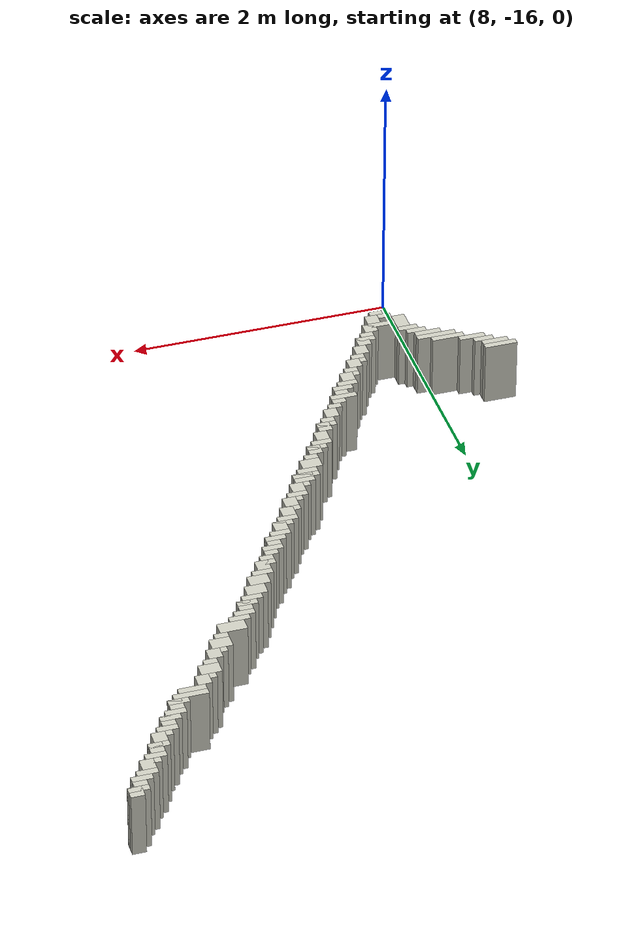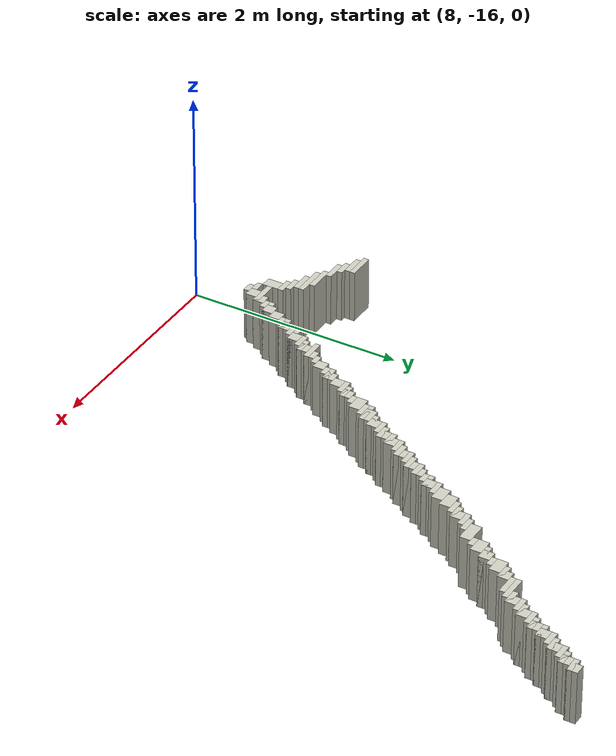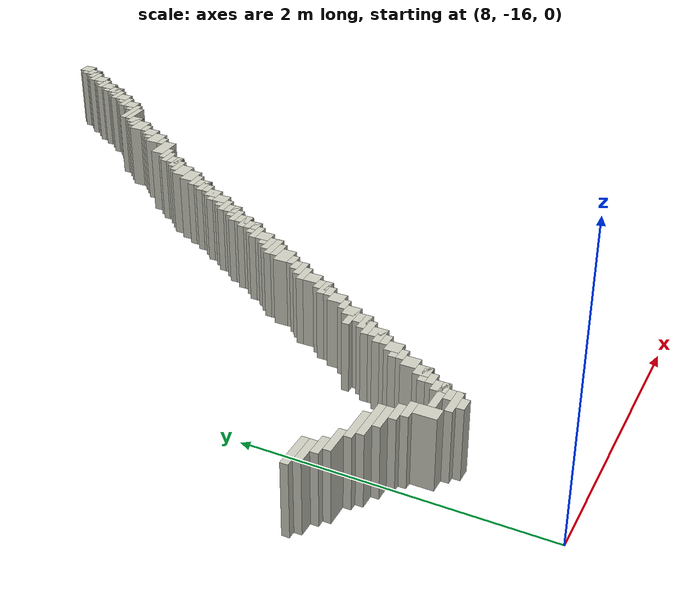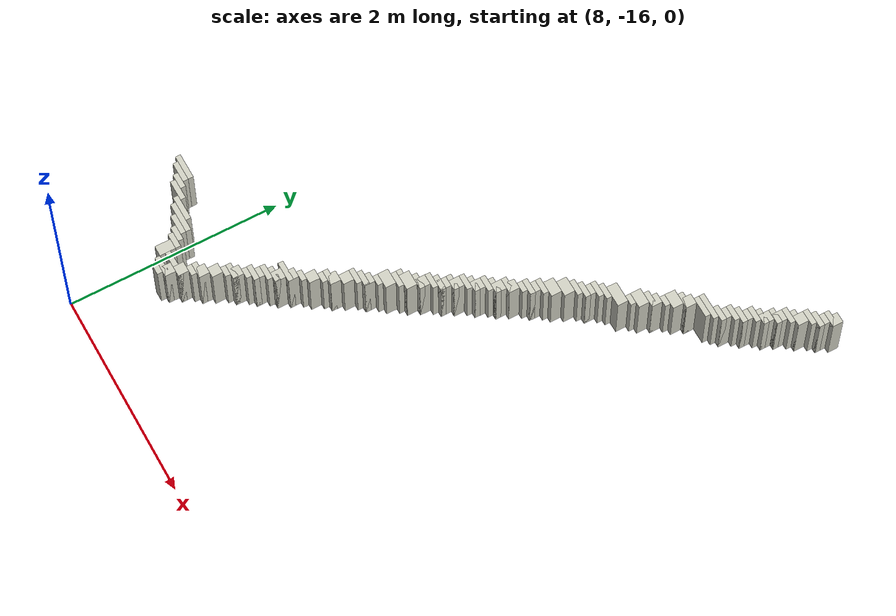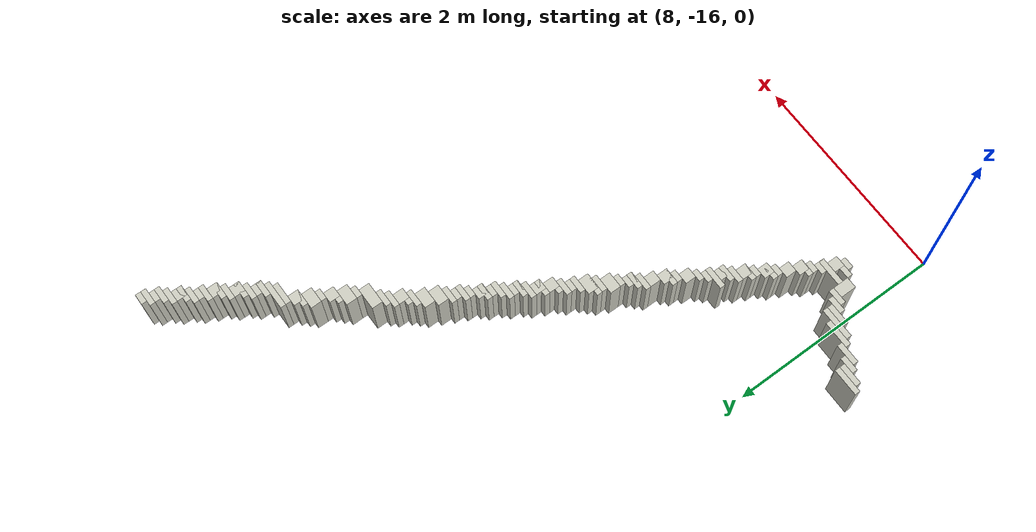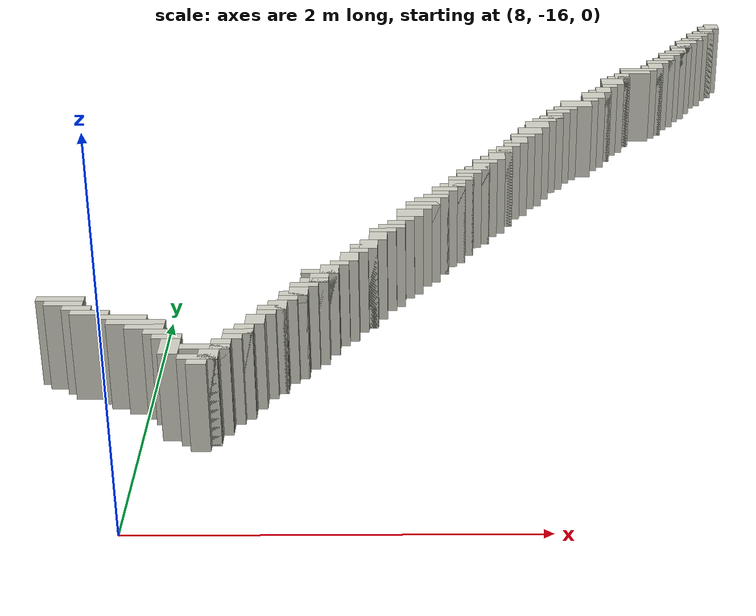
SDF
<sdf version="1.7">
 <world name="my_map_world">
  <model name="wall_594">
   <static>1</static>
   <pose>11.5 -10.45 0.25 0 -0 0</pose>
   <link name="link">
    <collision name="collision"><geometry><box><size>0.1 0.1 0.5</size></box></geometry></collision>
    <visual name="visual">
     <geometry><box><size>0.1 0.1 0.5</size></box></geometry>
     <material>
      <script><uri>file://media/materials/scripts/gazebo.material</uri><name>Gazebo/PaintedWall</name></script>
     </material>
    </visual>
   </link>
  </model>
  <model name="wall_596">
   <static>1</static>
   <pose>11.475 -10.475 0.25 0 -0 0</pose>
   <link name="link">
    <collision name="collision"><geometry><box><size>0.15 0.05 0.5</size></box></geometry></collision>
    <visual name="visual">
     <geometry><box><size>0.15 0.05 0.5</size></box></geometry>
     <material>
      <script><uri>file://media/materials/scripts/gazebo.material</uri><name>Gazebo/PaintedWall</name></script>
     </material>
    </visual>
   </link>
  </model>
  <model name="wall_597">
   <static>1</static>
   <pose>11.45 -10.55 0.25 0 -0 0</pose>
   <link name="link">
    <collision name="collision"><geometry><box><size>0.1 0.1 0.5</size></box></geometry></collision>
    <visual name="visual">
     <geometry><box><size>0.1 0.1 0.5</size></box></geometry>
     <material>
      <script><uri>file://media/materials/scripts/gazebo.material</uri><name>Gazebo/PaintedWall</name></script>
     </material>
    </visual>
   </link>
  </model>
  <model name="wall_599">
   <static>1</static>
   <pose>11.425 -10.575 0.25 0 -0 0</pose>
   <link name="link">
    <collision name="collision"><geometry><box><size>0.15 0.05 0.5</size></box></geometry></collision>
    <visual name="visual">
     <geometry><box><size>0.15 0.05 0.5</size></box></geometry>
     <material>
      <script><uri>file://media/materials/scripts/gazebo.material</uri><name>Gazebo/PaintedWall</name></script>
     </material>
    </visual>
   </link>
  </model>
  <model name="wall_600">
   <static>1</static>
   <pose>11.375 -10.625 0.25 0 -0 0</pose>
   <link name="link">
    <collision name="collision"><geometry><box><size>0.15 0.05 0.5</size></box></geometry></collision>
    <visual name="visual">
     <geometry><box><size>0.15 0.05 0.5</size></box></geometry>
     <material>
      <script><uri>file://media/materials/scripts/gazebo.material</uri><name>Gazebo/PaintedWall</name></script>
     </material>
    </visual>
   </link>
  </model>
  <model name="wall_602">
   <static>1</static>
   <pose>11.35 -10.7 0.25 0 -0 0</pose>
   <link name="link">
    <collision name="collision"><geometry><box><size>0.1 0.1 0.5</size></box></geometry></collision>
    <visual name="visual">
     <geometry><box><size>0.1 0.1 0.5</size></box></geometry>
     <material>
      <script><uri>file://media/materials/scripts/gazebo.material</uri><name>Gazebo/PaintedWall</name></script>
     </material>
    </visual>
   </link>
  </model>
  <model name="wall_604">
   <static>1</static>
   <pose>11.325 -10.725 0.25 0 -0 0</pose>
   <link name="link">
    <collision name="collision"><geometry><box><size>0.15 0.05 0.5</size></box></geometry></collision>
    <visual name="visual">
     <geometry><box><size>0.15 0.05 0.5</size></box></geometry>
     <material>
      <script><uri>file://media/materials/scripts/gazebo.material</uri><name>Gazebo/PaintedWall</name></script>
     </material>
    </visual>
   </link>
  </model>
  <model name="wall_606">
   <static>1</static>
   <pose>11.275 -10.775 0.25 0 -0 0</pose>
   <link name="link">
    <collision name="collision"><geometry><box><size>0.15 0.05 0.5</size></box></geometry></collision>
    <visual name="visual">
     <geometry><box><size>0.15 0.05 0.5</size></box></geometry>
     <material>
      <script><uri>file://media/materials/scripts/gazebo.material</uri><name>Gazebo/PaintedWall</name></script>
     </material>
    </visual>
   </link>
  </model>
  <model name="wall_608">
   <static>1</static>
   <pose>11.25 -10.85 0.25 0 -0 0</pose>
   <link name="link">
    <collision name="collision"><geometry><box><size>0.1 0.1 0.5</size></box></geometry></collision>
    <visual name="visual">
     <geometry><box><size>0.1 0.1 0.5</size></box></geometry>
     <material>
      <script><uri>file://media/materials/scripts/gazebo.material</uri><name>Gazebo/PaintedWall</name></script>
     </material>
    </visual>
   </link>
  </model>
  <model name="wall_610">
   <static>1</static>
   <pose>11.225 -10.875 0.25 0 -0 0</pose>
   <link name="link">
    <collision name="collision"><geometry><box><size>0.15 0.05 0.5</size></box></geometry></collision>
    <visual name="visual">
     <geometry><box><size>0.15 0.05 0.5</size></box></geometry>
     <material>
      <script><uri>file://media/materials/scripts/gazebo.material</uri><name>Gazebo/PaintedWall</name></script>
     </material>
    </visual>
   </link>
  </model>
  <model name="wall_612">
   <static>1</static>
   <pose>11.2 -10.95 0.25 0 -0 0</pose>
   <link name="link">
    <collision name="collision"><geometry><box><size>0.1 0.1 0.5</size></box></geometry></collision>
    <visual name="visual">
     <geometry><box><size>0.1 0.1 0.5</size></box></geometry>
     <material>
      <script><uri>file://media/materials/scripts/gazebo.material</uri><name>Gazebo/PaintedWall</name></script>
     </material>
    </visual>
   </link>
  </model>
  <model name="wall_614">
   <static>1</static>
   <pose>11.175 -10.975 0.25 0 -0 0</pose>
   <link name="link">
    <collision name="collision"><geometry><box><size>0.15 0.05 0.5</size></box></geometry></collision>
    <visual name="visual">
     <geometry><box><size>0.15 0.05 0.5</size></box></geometry>
     <material>
      <script><uri>file://media/materials/scripts/gazebo.material</uri><name>Gazebo/PaintedWall</name></script>
     </material>
    </visual>
   </link>
  </model>
  <model name="wall_616">
   <static>1</static>
   <pose>11.125 -11.025 0.25 0 -0 0</pose>
   <link name="link">
    <collision name="collision"><geometry><box><size>0.15 0.05 0.5</size></box></geometry></collision>
    <visual name="visual">
     <geometry><box><size>0.15 0.05 0.5</size></box></geometry>
     <material>
      <script><uri>file://media/materials/scripts/gazebo.material</uri><name>Gazebo/PaintedWall</name></script>
     </material>
    </visual>
   </link>
  </model>
  <model name="wall_617">
   <static>1</static>
   <pose>11.1 -11.1 0.25 0 -0 0</pose>
   <link name="link">
    <collision name="collision"><geometry><box><size>0.1 0.1 0.5</size></box></geometry></collision>
    <visual name="visual">
     <geometry><box><size>0.1 0.1 0.5</size></box></geometry>
     <material>
      <script><uri>file://media/materials/scripts/gazebo.material</uri><name>Gazebo/PaintedWall</name></script>
     </material>
    </visual>
   </link>
  </model>
  <model name="wall_619">
   <static>1</static>
   <pose>11.075 -11.125 0.25 0 -0 0</pose>
   <link name="link">
    <collision name="collision"><geometry><box><size>0.15 0.05 0.5</size></box></geometry></collision>
    <visual name="visual">
     <geometry><box><size>0.15 0.05 0.5</size></box></geometry>
     <material>
      <script><uri>file://media/materials/scripts/gazebo.material</uri><name>Gazebo/PaintedWall</name></script>
     </material>
    </visual>
   </link>
  </model>
  <model name="wall_621">
   <static>1</static>
   <pose>11.025 -11.175 0.25 0 -0 0</pose>
   <link name="link">
    <collision name="collision"><geometry><box><size>0.15 0.05 0.5</size></box></geometry></collision>
    <visual name="visual">
     <geometry><box><size>0.15 0.05 0.5</size></box></geometry>
     <material>
      <script><uri>file://media/materials/scripts/gazebo.material</uri><name>Gazebo/PaintedWall</name></script>
     </material>
    </visual>
   </link>
  </model>
  <model name="wall_623">
   <static>1</static>
   <pose>11 -11.25 0.25 0 -0 0</pose>
   <link name="link">
    <collision name="collision"><geometry><box><size>0.1 0.1 0.5</size></box></geometry></collision>
    <visual name="visual">
     <geometry><box><size>0.1 0.1 0.5</size></box></geometry>
     <material>
      <script><uri>file://media/materials/scripts/gazebo.material</uri><name>Gazebo/PaintedWall</name></script>
     </material>
    </visual>
   </link>
  </model>
  <model name="wall_626">
   <static>1</static>
   <pose>10.975 -11.275 0.25 0 -0 0</pose>
   <link name="link">
    <collision name="collision"><geometry><box><size>0.15 0.05 0.5</size></box></geometry></collision>
    <visual name="visual">
     <geometry><box><size>0.15 0.05 0.5</size></box></geometry>
     <material>
      <script><uri>file://media/materials/scripts/gazebo.material</uri><name>Gazebo/PaintedWall</name></script>
     </material>
    </visual>
   </link>
  </model>
  <model name="wall_628">
   <static>1</static>
   <pose>10.875 -11.325 0.25 0 -0 0</pose>
   <link name="link">
    <collision name="collision"><geometry><box><size>0.25 0.05 0.5</size></box></geometry></collision>
    <visual name="visual">
     <geometry><box><size>0.25 0.05 0.5</size></box></geometry>
     <material>
      <script><uri>file://media/materials/scripts/gazebo.material</uri><name>Gazebo/PaintedWall</name></script>
     </material>
    </visual>
   </link>
  </model>
  <model name="wall_630">
   <static>1</static>
   <pose>10.85 -11.375 0.25 0 -0 0</pose>
   <link name="link">
    <collision name="collision"><geometry><box><size>0.2 0.05 0.5</size></box></geometry></collision>
    <visual name="visual">
     <geometry><box><size>0.2 0.05 0.5</size></box></geometry>
     <material>
      <script><uri>file://media/materials/scripts/gazebo.material</uri><name>Gazebo/PaintedWall</name></script>
     </material>
    </visual>
   </link>
  </model>
  <model name="wall_632">
   <static>1</static>
   <pose>10.75 -11.45 0.25 0 -0 0</pose>
   <link name="link">
    <collision name="collision"><geometry><box><size>0.1 0.1 0.5</size></box></geometry></collision>
    <visual name="visual">
     <geometry><box><size>0.1 0.1 0.5</size></box></geometry>
     <material>
      <script><uri>file://media/materials/scripts/gazebo.material</uri><name>Gazebo/PaintedWall</name></script>
     </material>
    </visual>
   </link>
  </model>
  <model name="wall_634">
   <static>1</static>
   <pose>10.725 -11.475 0.25 0 -0 0</pose>
   <link name="link">
    <collision name="collision"><geometry><box><size>0.15 0.05 0.5</size></box></geometry></collision>
    <visual name="visual">
     <geometry><box><size>0.15 0.05 0.5</size></box></geometry>
     <material>
      <script><uri>file://media/materials/scripts/gazebo.material</uri><name>Gazebo/PaintedWall</name></script>
     </material>
    </visual>
   </link>
  </model>
  <model name="wall_636">
   <static>1</static>
   <pose>10.675 -11.55 0.25 0 -0 0</pose>
   <link name="link">
    <collision name="collision"><geometry><box><size>0.15 0.1 0.5</size></box></geometry></collision>
    <visual name="visual">
     <geometry><box><size>0.15 0.1 0.5</size></box></geometry>
     <material>
      <script><uri>file://media/materials/scripts/gazebo.material</uri><name>Gazebo/PaintedWall</name></script>
     </material>
    </visual>
   </link>
  </model>
  <model name="wall_639">
   <static>1</static>
   <pose>10.65 -11.625 0.25 0 -0 0</pose>
   <link name="link">
    <collision name="collision"><geometry><box><size>0.1 0.05 0.5</size></box></geometry></collision>
    <visual name="visual">
     <geometry><box><size>0.1 0.05 0.5</size></box></geometry>
     <material>
      <script><uri>file://media/materials/scripts/gazebo.material</uri><name>Gazebo/PaintedWall</name></script>
     </material>
    </visual>
   </link>
  </model>
  <model name="wall_641">
   <static>1</static>
   <pose>10.6 -11.7 0.25 0 -0 0</pose>
   <link name="link">
    <collision name="collision"><geometry><box><size>0.1 0.1 0.5</size></box></geometry></collision>
    <visual name="visual">
     <geometry><box><size>0.1 0.1 0.5</size></box></geometry>
     <material>
      <script><uri>file://media/materials/scripts/gazebo.material</uri><name>Gazebo/PaintedWall</name></script>
     </material>
    </visual>
   </link>
  </model>
  <model name="wall_644">
   <static>1</static>
   <pose>10.575 -11.725 0.25 0 -0 0</pose>
   <link name="link">
    <collision name="collision"><geometry><box><size>0.15 0.05 0.5</size></box></geometry></collision>
    <visual name="visual">
     <geometry><box><size>0.15 0.05 0.5</size></box></geometry>
     <material>
      <script><uri>file://media/materials/scripts/gazebo.material</uri><name>Gazebo/PaintedWall</name></script>
     </material>
    </visual>
   </link>
  </model>
  <model name="wall_647">
   <static>1</static>
   <pose>10.525 -11.8 0.25 0 -0 0</pose>
   <link name="link">
    <collision name="collision"><geometry><box><size>0.15 0.1 0.5</size></box></geometry></collision>
    <visual name="visual">
     <geometry><box><size>0.15 0.1 0.5</size></box></geometry>
     <material>
      <script><uri>file://media/materials/scripts/gazebo.material</uri><name>Gazebo/PaintedWall</name></script>
     </material>
    </visual>
   </link>
  </model>
  <model name="wall_653">
   <static>1</static>
   <pose>10.5 -11.875 0.25 0 -0 0</pose>
   <link name="link">
    <collision name="collision"><geometry><box><size>0.1 0.05 0.5</size></box></geometry></collision>
    <visual name="visual">
     <geometry><box><size>0.1 0.05 0.5</size></box></geometry>
     <material>
      <script><uri>file://media/materials/scripts/gazebo.material</uri><name>Gazebo/PaintedWall</name></script>
     </material>
    </visual>
   </link>
  </model>
  <model name="wall_656">
   <static>1</static>
   <pose>10.4 -11.95 0.25 0 -0 0</pose>
   <link name="link">
    <collision name="collision"><geometry><box><size>0.2 0.1 0.5</size></box></geometry></collision>
    <visual name="visual">
     <geometry><box><size>0.2 0.1 0.5</size></box></geometry>
     <material>
      <script><uri>file://media/materials/scripts/gazebo.material</uri><name>Gazebo/PaintedWall</name></script>
     </material>
    </visual>
   </link>
  </model>
  <model name="wall_660">
   <static>1</static>
   <pose>10.325 -12.025 0.25 0 -0 0</pose>
   <link name="link">
    <collision name="collision"><geometry><box><size>0.15 0.05 0.5</size></box></geometry></collision>
    <visual name="visual">
     <geometry><box><size>0.15 0.05 0.5</size></box></geometry>
     <material>
      <script><uri>file://media/materials/scripts/gazebo.material</uri><name>Gazebo/PaintedWall</name></script>
     </material>
    </visual>
   </link>
  </model>
  <model name="wall_662">
   <static>1</static>
   <pose>10.275 -12.075 0.25 0 -0 0</pose>
   <link name="link">
    <collision name="collision"><geometry><box><size>0.15 0.05 0.5</size></box></geometry></collision>
    <visual name="visual">
     <geometry><box><size>0.15 0.05 0.5</size></box></geometry>
     <material>
      <script><uri>file://media/materials/scripts/gazebo.material</uri><name>Gazebo/PaintedWall</name></script>
     </material>
    </visual>
   </link>
  </model>
  <model name="wall_663">
   <static>1</static>
   <pose>10.25 -12.15 0.25 0 -0 0</pose>
   <link name="link">
    <collision name="collision"><geometry><box><size>0.1 0.1 0.5</size></box></geometry></collision>
    <visual name="visual">
     <geometry><box><size>0.1 0.1 0.5</size></box></geometry>
     <material>
      <script><uri>file://media/materials/scripts/gazebo.material</uri><name>Gazebo/PaintedWall</name></script>
     </material>
    </visual>
   </link>
  </model>
  <model name="wall_665">
   <static>1</static>
   <pose>10.225 -12.175 0.25 0 -0 0</pose>
   <link name="link">
    <collision name="collision"><geometry><box><size>0.15 0.05 0.5</size></box></geometry></collision>
    <visual name="visual">
     <geometry><box><size>0.15 0.05 0.5</size></box></geometry>
     <material>
      <script><uri>file://media/materials/scripts/gazebo.material</uri><name>Gazebo/PaintedWall</name></script>
     </material>
    </visual>
   </link>
  </model>
  <model name="wall_666">
   <static>1</static>
   <pose>10.175 -12.225 0.25 0 -0 0</pose>
   <link name="link">
    <collision name="collision"><geometry><box><size>0.15 0.05 0.5</size></box></geometry></collision>
    <visual name="visual">
     <geometry><box><size>0.15 0.05 0.5</size></box></geometry>
     <material>
      <script><uri>file://media/materials/scripts/gazebo.material</uri><name>Gazebo/PaintedWall</name></script>
     </material>
    </visual>
   </link>
  </model>
  <model name="wall_668">
   <static>1</static>
   <pose>10.125 -12.3 0.25 0 -0 0</pose>
   <link name="link">
    <collision name="collision"><geometry><box><size>0.15 0.1 0.5</size></box></geometry></collision>
    <visual name="visual">
     <geometry><box><size>0.15 0.1 0.5</size></box></geometry>
     <material>
      <script><uri>file://media/materials/scripts/gazebo.material</uri><name>Gazebo/PaintedWall</name></script>
     </material>
    </visual>
   </link>
  </model>
  <model name="wall_671">
   <static>1</static>
   <pose>10.075 -12.4 0.25 0 -0 0</pose>
   <link name="link">
    <collision name="collision"><geometry><box><size>0.15 0.1 0.5</size></box></geometry></collision>
    <visual name="visual">
     <geometry><box><size>0.15 0.1 0.5</size></box></geometry>
     <material>
      <script><uri>file://media/materials/scripts/gazebo.material</uri><name>Gazebo/PaintedWall</name></script>
     </material>
    </visual>
   </link>
  </model>
  <model name="wall_674">
   <static>1</static>
   <pose>10.025 -12.475 0.25 0 -0 0</pose>
   <link name="link">
    <collision name="collision"><geometry><box><size>0.15 0.05 0.5</size></box></geometry></collision>
    <visual name="visual">
     <geometry><box><size>0.15 0.05 0.5</size></box></geometry>
     <material>
      <script><uri>file://media/materials/scripts/gazebo.material</uri><name>Gazebo/PaintedWall</name></script>
     </material>
    </visual>
   </link>
  </model>
  <model name="wall_676">
   <static>1</static>
   <pose>10 -12.55 0.25 0 -0 0</pose>
   <link name="link">
    <collision name="collision"><geometry><box><size>0.1 0.1 0.5</size></box></geometry></collision>
    <visual name="visual">
     <geometry><box><size>0.1 0.1 0.5</size></box></geometry>
     <material>
      <script><uri>file://media/materials/scripts/gazebo.material</uri><name>Gazebo/PaintedWall</name></script>
     </material>
    </visual>
   </link>
  </model>
  <model name="wall_678">
   <static>1</static>
   <pose>9.975 -12.575 0.25 0 -0 0</pose>
   <link name="link">
    <collision name="collision"><geometry><box><size>0.15 0.05 0.5</size></box></geometry></collision>
    <visual name="visual">
     <geometry><box><size>0.15 0.05 0.5</size></box></geometry>
     <material>
      <script><uri>file://media/materials/scripts/gazebo.material</uri><name>Gazebo/PaintedWall</name></script>
     </material>
    </visual>
   </link>
  </model>
  <model name="wall_681">
   <static>1</static>
   <pose>9.95 -12.625 0.25 0 -0 0</pose>
   <link name="link">
    <collision name="collision"><geometry><box><size>0.1 0.05 0.5</size></box></geometry></collision>
    <visual name="visual">
     <geometry><box><size>0.1 0.05 0.5</size></box></geometry>
     <material>
      <script><uri>file://media/materials/scripts/gazebo.material</uri><name>Gazebo/PaintedWall</name></script>
     </material>
    </visual>
   </link>
  </model>
  <model name="wall_683">
   <static>1</static>
   <pose>9.9 -12.7 0.25 0 -0 0</pose>
   <link name="link">
    <collision name="collision"><geometry><box><size>0.1 0.1 0.5</size></box></geometry></collision>
    <visual name="visual">
     <geometry><box><size>0.1 0.1 0.5</size></box></geometry>
     <material>
      <script><uri>file://media/materials/scripts/gazebo.material</uri><name>Gazebo/PaintedWall</name></script>
     </material>
    </visual>
   </link>
  </model>
  <model name="wall_685">
   <static>1</static>
   <pose>9.875 -12.725 0.25 0 -0 0</pose>
   <link name="link">
    <collision name="collision"><geometry><box><size>0.15 0.05 0.5</size></box></geometry></collision>
    <visual name="visual">
     <geometry><box><size>0.15 0.05 0.5</size></box></geometry>
     <material>
      <script><uri>file://media/materials/scripts/gazebo.material</uri><name>Gazebo/PaintedWall</name></script>
     </material>
    </visual>
   </link>
  </model>
  <model name="wall_687">
   <static>1</static>
   <pose>9.85 -12.8 0.25 0 -0 0</pose>
   <link name="link">
    <collision name="collision"><geometry><box><size>0.1 0.1 0.5</size></box></geometry></collision>
    <visual name="visual">
     <geometry><box><size>0.1 0.1 0.5</size></box></geometry>
     <material>
      <script><uri>file://media/materials/scripts/gazebo.material</uri><name>Gazebo/PaintedWall</name></script>
     </material>
    </visual>
   </link>
  </model>
  <model name="wall_689">
   <static>1</static>
   <pose>9.825 -12.825 0.25 0 -0 0</pose>
   <link name="link">
    <collision name="collision"><geometry><box><size>0.15 0.05 0.5</size></box></geometry></collision>
    <visual name="visual">
     <geometry><box><size>0.15 0.05 0.5</size></box></geometry>
     <material>
      <script><uri>file://media/materials/scripts/gazebo.material</uri><name>Gazebo/PaintedWall</name></script>
     </material>
    </visual>
   </link>
  </model>
  <model name="wall_691">
   <static>1</static>
   <pose>9.775 -12.875 0.25 0 -0 0</pose>
   <link name="link">
    <collision name="collision"><geometry><box><size>0.15 0.05 0.5</size></box></geometry></collision>
    <visual name="visual">
     <geometry><box><size>0.15 0.05 0.5</size></box></geometry>
     <material>
      <script><uri>file://media/materials/scripts/gazebo.material</uri><name>Gazebo/PaintedWall</name></script>
     </material>
    </visual>
   </link>
  </model>
  <model name="wall_693">
   <static>1</static>
   <pose>9.75 -12.95 0.25 0 -0 0</pose>
   <link name="link">
    <collision name="collision"><geometry><box><size>0.1 0.1 0.5</size></box></geometry></collision>
    <visual name="visual">
     <geometry><box><size>0.1 0.1 0.5</size></box></geometry>
     <material>
      <script><uri>file://media/materials/scripts/gazebo.material</uri><name>Gazebo/PaintedWall</name></script>
     </material>
    </visual>
   </link>
  </model>
  <model name="wall_695">
   <static>1</static>
   <pose>9.725 -12.975 0.25 0 -0 0</pose>
   <link name="link">
    <collision name="collision"><geometry><box><size>0.15 0.05 0.5</size></box></geometry></collision>
    <visual name="visual">
     <geometry><box><size>0.15 0.05 0.5</size></box></geometry>
     <material>
      <script><uri>file://media/materials/scripts/gazebo.material</uri><name>Gazebo/PaintedWall</name></script>
     </material>
    </visual>
   </link>
  </model>
  <model name="wall_697">
   <static>1</static>
   <pose>9.675 -13.025 0.25 0 -0 0</pose>
   <link name="link">
    <collision name="collision"><geometry><box><size>0.15 0.05 0.5</size></box></geometry></collision>
    <visual name="visual">
     <geometry><box><size>0.15 0.05 0.5</size></box></geometry>
     <material>
      <script><uri>file://media/materials/scripts/gazebo.material</uri><name>Gazebo/PaintedWall</name></script>
     </material>
    </visual>
   </link>
  </model>
  <model name="wall_699">
   <static>1</static>
   <pose>9.65 -13.1 0.25 0 -0 0</pose>
   <link name="link">
    <collision name="collision"><geometry><box><size>0.1 0.1 0.5</size></box></geometry></collision>
    <visual name="visual">
     <geometry><box><size>0.1 0.1 0.5</size></box></geometry>
     <material>
      <script><uri>file://media/materials/scripts/gazebo.material</uri><name>Gazebo/PaintedWall</name></script>
     </material>
    </visual>
   </link>
  </model>
  <model name="wall_701">
   <static>1</static>
   <pose>9.625 -13.125 0.25 0 -0 0</pose>
   <link name="link">
    <collision name="collision"><geometry><box><size>0.15 0.05 0.5</size></box></geometry></collision>
    <visual name="visual">
     <geometry><box><size>0.15 0.05 0.5</size></box></geometry>
     <material>
      <script><uri>file://media/materials/scripts/gazebo.material</uri><name>Gazebo/PaintedWall</name></script>
     </material>
    </visual>
   </link>
  </model>
  <model name="wall_703">
   <static>1</static>
   <pose>9.6 -13.2 0.25 0 -0 0</pose>
   <link name="link">
    <collision name="collision"><geometry><box><size>0.1 0.1 0.5</size></box></geometry></collision>
    <visual name="visual">
     <geometry><box><size>0.1 0.1 0.5</size></box></geometry>
     <material>
      <script><uri>file://media/materials/scripts/gazebo.material</uri><name>Gazebo/PaintedWall</name></script>
     </material>
    </visual>
   </link>
  </model>
  <model name="wall_705">
   <static>1</static>
   <pose>9.575 -13.225 0.25 0 -0 0</pose>
   <link name="link">
    <collision name="collision"><geometry><box><size>0.15 0.05 0.5</size></box></geometry></collision>
    <visual name="visual">
     <geometry><box><size>0.15 0.05 0.5</size></box></geometry>
     <material>
      <script><uri>file://media/materials/scripts/gazebo.material</uri><name>Gazebo/PaintedWall</name></script>
     </material>
    </visual>
   </link>
  </model>
  <model name="wall_707">
   <static>1</static>
   <pose>9.525 -13.275 0.25 0 -0 0</pose>
   <link name="link">
    <collision name="collision"><geometry><box><size>0.15 0.05 0.5</size></box></geometry></collision>
    <visual name="visual">
     <geometry><box><size>0.15 0.05 0.5</size></box></geometry>
     <material>
      <script><uri>file://media/materials/scripts/gazebo.material</uri><name>Gazebo/PaintedWall</name></script>
     </material>
    </visual>
   </link>
  </model>
  <model name="wall_708">
   <static>1</static>
   <pose>9.5 -13.35 0.25 0 -0 0</pose>
   <link name="link">
    <collision name="collision"><geometry><box><size>0.1 0.1 0.5</size></box></geometry></collision>
    <visual name="visual">
     <geometry><box><size>0.1 0.1 0.5</size></box></geometry>
     <material>
      <script><uri>file://media/materials/scripts/gazebo.material</uri><name>Gazebo/PaintedWall</name></script>
     </material>
    </visual>
   </link>
  </model>
  <model name="wall_710">
   <static>1</static>
   <pose>9.475 -13.375 0.25 0 -0 0</pose>
   <link name="link">
    <collision name="collision"><geometry><box><size>0.15 0.05 0.5</size></box></geometry></collision>
    <visual name="visual">
     <geometry><box><size>0.15 0.05 0.5</size></box></geometry>
     <material>
      <script><uri>file://media/materials/scripts/gazebo.material</uri><name>Gazebo/PaintedWall</name></script>
     </material>
    </visual>
   </link>
  </model>
  <model name="wall_712">
   <static>1</static>
   <pose>9.425 -13.45 0.25 0 -0 0</pose>
   <link name="link">
    <collision name="collision"><geometry><box><size>0.15 0.1 0.5</size></box></geometry></collision>
    <visual name="visual">
     <geometry><box><size>0.15 0.1 0.5</size></box></geometry>
     <material>
      <script><uri>file://media/materials/scripts/gazebo.material</uri><name>Gazebo/PaintedWall</name></script>
     </material>
    </visual>
   </link>
  </model>
  <model name="wall_714">
   <static>1</static>
   <pose>9.4 -13.475 0.25 0 -0 0</pose>
   <link name="link">
    <collision name="collision"><geometry><box><size>0.2 0.05 0.5</size></box></geometry></collision>
    <visual name="visual">
     <geometry><box><size>0.2 0.05 0.5</size></box></geometry>
     <material>
      <script><uri>file://media/materials/scripts/gazebo.material</uri><name>Gazebo/PaintedWall</name></script>
     </material>
    </visual>
   </link>
  </model>
  <model name="wall_716">
   <static>1</static>
   <pose>9.375 -13.525 0.25 0 -0 0</pose>
   <link name="link">
    <collision name="collision"><geometry><box><size>0.15 0.05 0.5</size></box></geometry></collision>
    <visual name="visual">
     <geometry><box><size>0.15 0.05 0.5</size></box></geometry>
     <material>
      <script><uri>file://media/materials/scripts/gazebo.material</uri><name>Gazebo/PaintedWall</name></script>
     </material>
    </visual>
   </link>
  </model>
  <model name="wall_718">
   <static>1</static>
   <pose>9.325 -13.6 0.25 0 -0 0</pose>
   <link name="link">
    <collision name="collision"><geometry><box><size>0.15 0.1 0.5</size></box></geometry></collision>
    <visual name="visual">
     <geometry><box><size>0.15 0.1 0.5</size></box></geometry>
     <material>
      <script><uri>file://media/materials/scripts/gazebo.material</uri><name>Gazebo/PaintedWall</name></script>
     </material>
    </visual>
   </link>
  </model>
  <model name="wall_721">
   <static>1</static>
   <pose>9.3 -13.675 0.25 0 -0 0</pose>
   <link name="link">
    <collision name="collision"><geometry><box><size>0.1 0.05 0.5</size></box></geometry></collision>
    <visual name="visual">
     <geometry><box><size>0.1 0.05 0.5</size></box></geometry>
     <material>
      <script><uri>file://media/materials/scripts/gazebo.material</uri><name>Gazebo/PaintedWall</name></script>
     </material>
    </visual>
   </link>
  </model>
  <model name="wall_723">
   <static>1</static>
   <pose>9.25 -13.75 0.25 0 -0 0</pose>
   <link name="link">
    <collision name="collision"><geometry><box><size>0.1 0.1 0.5</size></box></geometry></collision>
    <visual name="visual">
     <geometry><box><size>0.1 0.1 0.5</size></box></geometry>
     <material>
      <script><uri>file://media/materials/scripts/gazebo.material</uri><name>Gazebo/PaintedWall</name></script>
     </material>
    </visual>
   </link>
  </model>
  <model name="wall_726">
   <static>1</static>
   <pose>9.225 -13.775 0.25 0 -0 0</pose>
   <link name="link">
    <collision name="collision"><geometry><box><size>0.15 0.05 0.5</size></box></geometry></collision>
    <visual name="visual">
     <geometry><box><size>0.15 0.05 0.5</size></box></geometry>
     <material>
      <script><uri>file://media/materials/scripts/gazebo.material</uri><name>Gazebo/PaintedWall</name></script>
     </material>
    </visual>
   </link>
  </model>
  <model name="wall_728">
   <static>1</static>
   <pose>9.175 -13.825 0.25 0 -0 0</pose>
   <link name="link">
    <collision name="collision"><geometry><box><size>0.15 0.05 0.5</size></box></geometry></collision>
    <visual name="visual">
     <geometry><box><size>0.15 0.05 0.5</size></box></geometry>
     <material>
      <script><uri>file://media/materials/scripts/gazebo.material</uri><name>Gazebo/PaintedWall</name></script>
     </material>
    </visual>
   </link>
  </model>
  <model name="wall_731">
   <static>1</static>
   <pose>9.15 -13.9 0.25 0 -0 0</pose>
   <link name="link">
    <collision name="collision"><geometry><box><size>0.1 0.1 0.5</size></box></geometry></collision>
    <visual name="visual">
     <geometry><box><size>0.1 0.1 0.5</size></box></geometry>
     <material>
      <script><uri>file://media/materials/scripts/gazebo.material</uri><name>Gazebo/PaintedWall</name></script>
     </material>
    </visual>
   </link>
  </model>
  <model name="wall_734">
   <static>1</static>
   <pose>9.1 -14 0.25 0 -0 0</pose>
   <link name="link">
    <collision name="collision"><geometry><box><size>0.1 0.1 0.5</size></box></geometry></collision>
    <visual name="visual">
     <geometry><box><size>0.1 0.1 0.5</size></box></geometry>
     <material>
      <script><uri>file://media/materials/scripts/gazebo.material</uri><name>Gazebo/PaintedWall</name></script>
     </material>
    </visual>
   </link>
  </model>
  <model name="wall_737">
   <static>1</static>
   <pose>9.075 -14.025 0.25 0 -0 0</pose>
   <link name="link">
    <collision name="collision"><geometry><box><size>0.15 0.05 0.5</size></box></geometry></collision>
    <visual name="visual">
     <geometry><box><size>0.15 0.05 0.5</size></box></geometry>
     <material>
      <script><uri>file://media/materials/scripts/gazebo.material</uri><name>Gazebo/PaintedWall</name></script>
     </material>
    </visual>
   </link>
  </model>
  <model name="wall_740">
   <static>1</static>
   <pose>9.05 -14.075 0.25 0 -0 0</pose>
   <link name="link">
    <collision name="collision"><geometry><box><size>0.1 0.05 0.5</size></box></geometry></collision>
    <visual name="visual">
     <geometry><box><size>0.1 0.05 0.5</size></box></geometry>
     <material>
      <script><uri>file://media/materials/scripts/gazebo.material</uri><name>Gazebo/PaintedWall</name></script>
     </material>
    </visual>
   </link>
  </model>
  <model name="wall_743">
   <static>1</static>
   <pose>9 -14.15 0.25 0 -0 0</pose>
   <link name="link">
    <collision name="collision"><geometry><box><size>0.1 0.1 0.5</size></box></geometry></collision>
    <visual name="visual">
     <geometry><box><size>0.1 0.1 0.5</size></box></geometry>
     <material>
      <script><uri>file://media/materials/scripts/gazebo.material</uri><name>Gazebo/PaintedWall</name></script>
     </material>
    </visual>
   </link>
  </model>
  <model name="wall_747">
   <static>1</static>
   <pose>8.95 -14.225 0.25 0 -0 0</pose>
   <link name="link">
    <collision name="collision"><geometry><box><size>0.1 0.05 0.5</size></box></geometry></collision>
    <visual name="visual">
     <geometry><box><size>0.1 0.05 0.5</size></box></geometry>
     <material>
      <script><uri>file://media/materials/scripts/gazebo.material</uri><name>Gazebo/PaintedWall</name></script>
     </material>
    </visual>
   </link>
  </model>
  <model name="wall_749">
   <static>1</static>
   <pose>8.9 -14.3 0.25 0 -0 0</pose>
   <link name="link">
    <collision name="collision"><geometry><box><size>0.1 0.1 0.5</size></box></geometry></collision>
    <visual name="visual">
     <geometry><box><size>0.1 0.1 0.5</size></box></geometry>
     <material>
      <script><uri>file://media/materials/scripts/gazebo.material</uri><name>Gazebo/PaintedWall</name></script>
     </material>
    </visual>
   </link>
  </model>
  <model name="wall_751">
   <static>1</static>
   <pose>8.85 -14.325 0.25 0 -0 0</pose>
   <link name="link">
    <collision name="collision"><geometry><box><size>0.2 0.05 0.5</size></box></geometry></collision>
    <visual name="visual">
     <geometry><box><size>0.2 0.05 0.5</size></box></geometry>
     <material>
      <script><uri>file://media/materials/scripts/gazebo.material</uri><name>Gazebo/PaintedWall</name></script>
     </material>
    </visual>
   </link>
  </model>
  <model name="wall_753">
   <static>1</static>
   <pose>8.85 -14.4 0.25 0 -0 0</pose>
   <link name="link">
    <collision name="collision"><geometry><box><size>0.1 0.1 0.5</size></box></geometry></collision>
    <visual name="visual">
     <geometry><box><size>0.1 0.1 0.5</size></box></geometry>
     <material>
      <script><uri>file://media/materials/scripts/gazebo.material</uri><name>Gazebo/PaintedWall</name></script>
     </material>
    </visual>
   </link>
  </model>
  <model name="wall_755">
   <static>1</static>
   <pose>8.825 -14.425 0.25 0 -0 0</pose>
   <link name="link">
    <collision name="collision"><geometry><box><size>0.15 0.05 0.5</size></box></geometry></collision>
    <visual name="visual">
     <geometry><box><size>0.15 0.05 0.5</size></box></geometry>
     <material>
      <script><uri>file://media/materials/scripts/gazebo.material</uri><name>Gazebo/PaintedWall</name></script>
     </material>
    </visual>
   </link>
  </model>
  <model name="wall_757">
   <static>1</static>
   <pose>8.775 -14.475 0.25 0 -0 0</pose>
   <link name="link">
    <collision name="collision"><geometry><box><size>0.15 0.05 0.5</size></box></geometry></collision>
    <visual name="visual">
     <geometry><box><size>0.15 0.05 0.5</size></box></geometry>
     <material>
      <script><uri>file://media/materials/scripts/gazebo.material</uri><name>Gazebo/PaintedWall</name></script>
     </material>
    </visual>
   </link>
  </model>
  <model name="wall_760">
   <static>1</static>
   <pose>8.75 -14.55 0.25 0 -0 0</pose>
   <link name="link">
    <collision name="collision"><geometry><box><size>0.1 0.1 0.5</size></box></geometry></collision>
    <visual name="visual">
     <geometry><box><size>0.1 0.1 0.5</size></box></geometry>
     <material>
      <script><uri>file://media/materials/scripts/gazebo.material</uri><name>Gazebo/PaintedWall</name></script>
     </material>
    </visual>
   </link>
  </model>
  <model name="wall_762">
   <static>1</static>
   <pose>8.725 -14.575 0.25 0 -0 0</pose>
   <link name="link">
    <collision name="collision"><geometry><box><size>0.15 0.05 0.5</size></box></geometry></collision>
    <visual name="visual">
     <geometry><box><size>0.15 0.05 0.5</size></box></geometry>
     <material>
      <script><uri>file://media/materials/scripts/gazebo.material</uri><name>Gazebo/PaintedWall</name></script>
     </material>
    </visual>
   </link>
  </model>
  <model name="wall_764">
   <static>1</static>
   <pose>7.525 -14.625 0.25 0 -0 0</pose>
   <link name="link">
    <collision name="collision"><geometry><box><size>0.25 0.05 0.5</size></box></geometry></collision>
    <visual name="visual">
     <geometry><box><size>0.25 0.05 0.5</size></box></geometry>
     <material>
      <script><uri>file://media/materials/scripts/gazebo.material</uri><name>Gazebo/PaintedWall</name></script>
     </material>
    </visual>
   </link>
  </model>
  <model name="wall_765">
   <static>1</static>
   <pose>8.7 -14.625 0.25 0 -0 0</pose>
   <link name="link">
    <collision name="collision"><geometry><box><size>0.1 0.05 0.5</size></box></geometry></collision>
    <visual name="visual">
     <geometry><box><size>0.1 0.05 0.5</size></box></geometry>
     <material>
      <script><uri>file://media/materials/scripts/gazebo.material</uri><name>Gazebo/PaintedWall</name></script>
     </material>
    </visual>
   </link>
  </model>
  <model name="wall_766">
   <static>1</static>
   <pose>7.55 -14.675 0.25 0 -0 0</pose>
   <link name="link">
    <collision name="collision"><geometry><box><size>0.2 0.05 0.5</size></box></geometry></collision>
    <visual name="visual">
     <geometry><box><size>0.2 0.05 0.5</size></box></geometry>
     <material>
      <script><uri>file://media/materials/scripts/gazebo.material</uri><name>Gazebo/PaintedWall</name></script>
     </material>
    </visual>
   </link>
  </model>
  <model name="wall_767">
   <static>1</static>
   <pose>8.65 -14.7 0.25 0 -0 0</pose>
   <link name="link">
    <collision name="collision"><geometry><box><size>0.1 0.1 0.5</size></box></geometry></collision>
    <visual name="visual">
     <geometry><box><size>0.1 0.1 0.5</size></box></geometry>
     <material>
      <script><uri>file://media/materials/scripts/gazebo.material</uri><name>Gazebo/PaintedWall</name></script>
     </material>
    </visual>
   </link>
  </model>
  <model name="wall_768">
   <static>1</static>
   <pose>7.625 -14.725 0.25 0 -0 0</pose>
   <link name="link">
    <collision name="collision"><geometry><box><size>0.15 0.05 0.5</size></box></geometry></collision>
    <visual name="visual">
     <geometry><box><size>0.15 0.05 0.5</size></box></geometry>
     <material>
      <script><uri>file://media/materials/scripts/gazebo.material</uri><name>Gazebo/PaintedWall</name></script>
     </material>
    </visual>
   </link>
  </model>
  <model name="wall_769">
   <static>1</static>
   <pose>8.625 -14.725 0.25 0 -0 0</pose>
   <link name="link">
    <collision name="collision"><geometry><box><size>0.15 0.05 0.5</size></box></geometry></collision>
    <visual name="visual">
     <geometry><box><size>0.15 0.05 0.5</size></box></geometry>
     <material>
      <script><uri>file://media/materials/scripts/gazebo.material</uri><name>Gazebo/PaintedWall</name></script>
     </material>
    </visual>
   </link>
  </model>
  <model name="wall_770">
   <static>1</static>
   <pose>7.7 -14.775 0.25 0 -0 0</pose>
   <link name="link">
    <collision name="collision"><geometry><box><size>0.2 0.05 0.5</size></box></geometry></collision>
    <visual name="visual">
     <geometry><box><size>0.2 0.05 0.5</size></box></geometry>
     <material>
      <script><uri>file://media/materials/scripts/gazebo.material</uri><name>Gazebo/PaintedWall</name></script>
     </material>
    </visual>
   </link>
  </model>
  <model name="wall_771">
   <static>1</static>
   <pose>8.6 -14.775 0.25 0 -0 0</pose>
   <link name="link">
    <collision name="collision"><geometry><box><size>0.1 0.05 0.5</size></box></geometry></collision>
    <visual name="visual">
     <geometry><box><size>0.1 0.05 0.5</size></box></geometry>
     <material>
      <script><uri>file://media/materials/scripts/gazebo.material</uri><name>Gazebo/PaintedWall</name></script>
     </material>
    </visual>
   </link>
  </model>
  <model name="wall_772">
   <static>1</static>
   <pose>7.875 -14.825 0.25 0 -0 0</pose>
   <link name="link">
    <collision name="collision"><geometry><box><size>0.25 0.05 0.5</size></box></geometry></collision>
    <visual name="visual">
     <geometry><box><size>0.25 0.05 0.5</size></box></geometry>
     <material>
      <script><uri>file://media/materials/scripts/gazebo.material</uri><name>Gazebo/PaintedWall</name></script>
     </material>
    </visual>
   </link>
  </model>
  <model name="wall_773">
   <static>1</static>
   <pose>8.55 -14.85 0.25 0 -0 0</pose>
   <link name="link">
    <collision name="collision"><geometry><box><size>0.1 0.1 0.5</size></box></geometry></collision>
    <visual name="visual">
     <geometry><box><size>0.1 0.1 0.5</size></box></geometry>
     <material>
      <script><uri>file://media/materials/scripts/gazebo.material</uri><name>Gazebo/PaintedWall</name></script>
     </material>
    </visual>
   </link>
  </model>
  <model name="wall_774">
   <static>1</static>
   <pose>7.95 -14.875 0.25 0 -0 0</pose>
   <link name="link">
    <collision name="collision"><geometry><box><size>0.3 0.05 0.5</size></box></geometry></collision>
    <visual name="visual">
     <geometry><box><size>0.3 0.05 0.5</size></box></geometry>
     <material>
      <script><uri>file://media/materials/scripts/gazebo.material</uri><name>Gazebo/PaintedWall</name></script>
     </material>
    </visual>
   </link>
  </model>
  <model name="wall_775">
   <static>1</static>
   <pose>8 -14.925 0.25 0 -0 0</pose>
   <link name="link">
    <collision name="collision"><geometry><box><size>0.2 0.05 0.5</size></box></geometry></collision>
    <visual name="visual">
     <geometry><box><size>0.2 0.05 0.5</size></box></geometry>
     <material>
      <script><uri>file://media/materials/scripts/gazebo.material</uri><name>Gazebo/PaintedWall</name></script>
     </material>
    </visual>
   </link>
  </model>
  <model name="wall_776">
   <static>1</static>
   <pose>8.5 -14.95 0.25 0 -0 0</pose>
   <link name="link">
    <collision name="collision"><geometry><box><size>0.1 0.1 0.5</size></box></geometry></collision>
    <visual name="visual">
     <geometry><box><size>0.1 0.1 0.5</size></box></geometry>
     <material>
      <script><uri>file://media/materials/scripts/gazebo.material</uri><name>Gazebo/PaintedWall</name></script>
     </material>
    </visual>
   </link>
  </model>
  <model name="wall_777">
   <static>1</static>
   <pose>8.075 -14.975 0.25 0 -0 0</pose>
   <link name="link">
    <collision name="collision"><geometry><box><size>0.15 0.05 0.5</size></box></geometry></collision>
    <visual name="visual">
     <geometry><box><size>0.15 0.05 0.5</size></box></geometry>
     <material>
      <script><uri>file://media/materials/scripts/gazebo.material</uri><name>Gazebo/PaintedWall</name></script>
     </material>
    </visual>
   </link>
  </model>
  <model name="wall_778">
   <static>1</static>
   <pose>8.475 -14.975 0.25 0 -0 0</pose>
   <link name="link">
    <collision name="collision"><geometry><box><size>0.15 0.05 0.5</size></box></geometry></collision>
    <visual name="visual">
     <geometry><box><size>0.15 0.05 0.5</size></box></geometry>
     <material>
      <script><uri>file://media/materials/scripts/gazebo.material</uri><name>Gazebo/PaintedWall</name></script>
     </material>
    </visual>
   </link>
  </model>
  <model name="wall_779">
   <static>1</static>
   <pose>8.125 -15.025 0.25 0 -0 0</pose>
   <link name="link">
    <collision name="collision"><geometry><box><size>0.15 0.05 0.5</size></box></geometry></collision>
    <visual name="visual">
     <geometry><box><size>0.15 0.05 0.5</size></box></geometry>
     <material>
      <script><uri>file://media/materials/scripts/gazebo.material</uri><name>Gazebo/PaintedWall</name></script>
     </material>
    </visual>
   </link>
  </model>
  <model name="wall_780">
   <static>1</static>
   <pose>8.45 -15.025 0.25 0 -0 0</pose>
   <link name="link">
    <collision name="collision"><geometry><box><size>0.1 0.05 0.5</size></box></geometry></collision>
    <visual name="visual">
     <geometry><box><size>0.1 0.05 0.5</size></box></geometry>
     <material>
      <script><uri>file://media/materials/scripts/gazebo.material</uri><name>Gazebo/PaintedWall</name></script>
     </material>
    </visual>
   </link>
  </model>
  <model name="wall_781">
   <static>1</static>
   <pose>8.15 -15.125 0.25 0 -0 0</pose>
   <link name="link">
    <collision name="collision"><geometry><box><size>0.1 0.15 0.5</size></box></geometry></collision>
    <visual name="visual">
     <geometry><box><size>0.1 0.15 0.5</size></box></geometry>
     <material>
      <script><uri>file://media/materials/scripts/gazebo.material</uri><name>Gazebo/PaintedWall</name></script>
     </material>
    </visual>
   </link>
  </model>
  <model name="wall_782">
   <static>1</static>
   <pose>8.4 -15.1 0.25 0 -0 0</pose>
   <link name="link">
    <collision name="collision"><geometry><box><size>0.1 0.1 0.5</size></box></geometry></collision>
    <visual name="visual">
     <geometry><box><size>0.1 0.1 0.5</size></box></geometry>
     <material>
      <script><uri>file://media/materials/scripts/gazebo.material</uri><name>Gazebo/PaintedWall</name></script>
     </material>
    </visual>
   </link>
  </model>
  <model name="wall_783">
   <static>1</static>
   <pose>8.325 -15.125 0.25 0 -0 0</pose>
   <link name="link">
    <collision name="collision"><geometry><box><size>0.25 0.05 0.5</size></box></geometry></collision>
    <visual name="visual">
     <geometry><box><size>0.25 0.05 0.5</size></box></geometry>
     <material>
      <script><uri>file://media/materials/scripts/gazebo.material</uri><name>Gazebo/PaintedWall</name></script>
     </material>
    </visual>
   </link>
  </model>
  <model name="wall_784">
   <static>1</static>
   <pose>8.35 -15.2 0.25 0 -0 0</pose>
   <link name="link">
    <collision name="collision"><geometry><box><size>0.1 0.1 0.5</size></box></geometry></collision>
    <visual name="visual">
     <geometry><box><size>0.1 0.1 0.5</size></box></geometry>
     <material>
      <script><uri>file://media/materials/scripts/gazebo.material</uri><name>Gazebo/PaintedWall</name></script>
     </material>
    </visual>
   </link>
  </model>
  <model name="wall_785">
   <static>1</static>
   <pose>8.3 -15.225 0.25 0 -0 0</pose>
   <link name="link">
    <collision name="collision"><geometry><box><size>0.2 0.05 0.5</size></box></geometry></collision>
    <visual name="visual">
     <geometry><box><size>0.2 0.05 0.5</size></box></geometry>
     <material>
      <script><uri>file://media/materials/scripts/gazebo.material</uri><name>Gazebo/PaintedWall</name></script>
     </material>
    </visual>
   </link>
  </model>
  <model name="wall_786">
   <static>1</static>
   <pose>8.3 -15.275 0.25 0 -0 0</pose>
   <link name="link">
    <collision name="collision"><geometry><box><size>0.1 0.05 0.5</size></box></geometry></collision>
    <visual name="visual">
     <geometry><box><size>0.1 0.05 0.5</size></box></geometry>
     <material>
      <script><uri>file://media/materials/scripts/gazebo.material</uri><name>Gazebo/PaintedWall</name></script>
     </material>
    </visual>
   </link>
  </model>
 </world>
</sdf>
